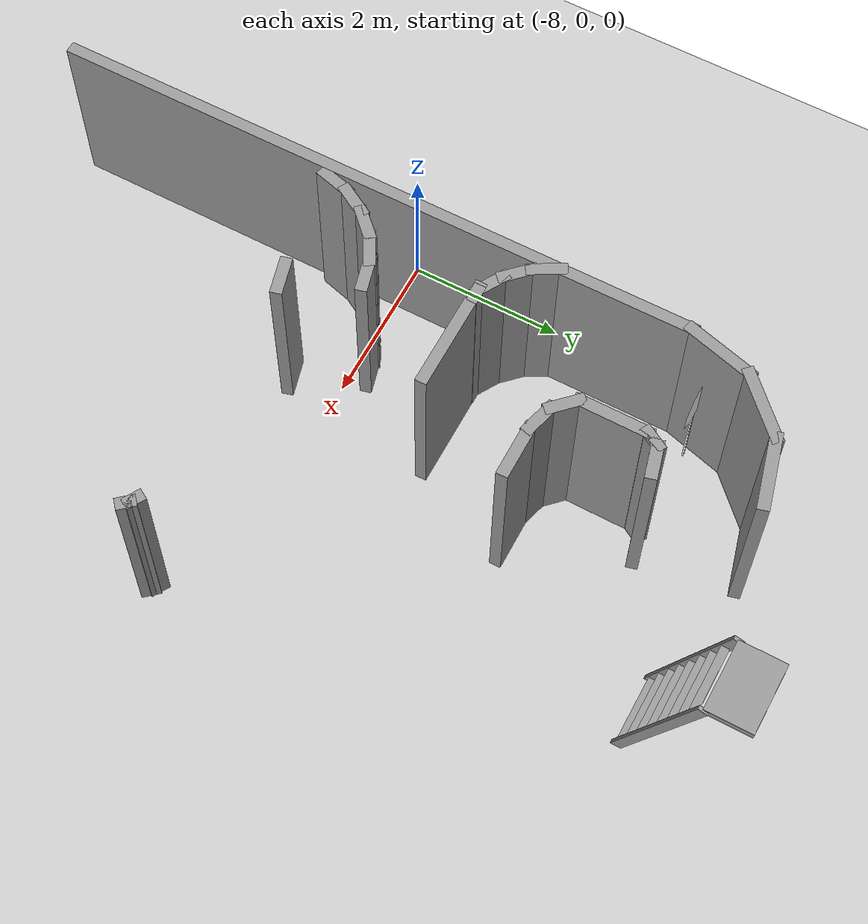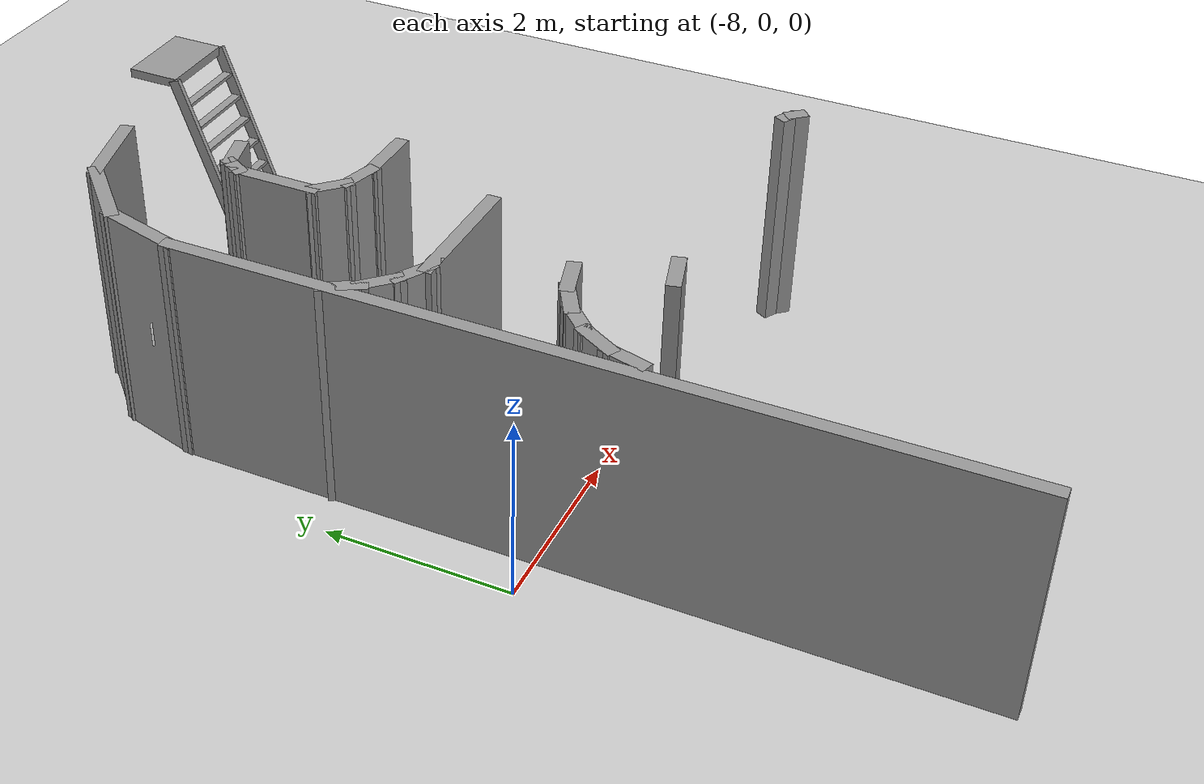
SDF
<sdf version="1.7">
 <world name="default">
  <model name="ground_plane">
   <static>1</static>
   <link name="link">
    <collision name="collision">
     <geometry><plane><normal>0 0 1</normal><size>100 100</size></plane></geometry>
     <surface>
      <contact><collide_bitmask>65535</collide_bitmask></contact>
      <friction><ode><mu>100</mu><mu2>50</mu2></ode></friction>
     </surface>
    </collision>
    <visual name="visual">
     <cast_shadows>0</cast_shadows>
     <geometry><plane><normal>0 0 1</normal><size>100 100</size></plane></geometry>
     <material>
      <script><uri>file://media/materials/scripts/gazebo.material</uri><name>Gazebo/Grey</name></script>
     </material>
    </visual>
   </link>
  </model>
  <model name="Race_Track">
   <link name="Wall_100">
    <pose>-7.14893 0.577689 0 0 0 -2.61799</pose>
    <visual name="Wall_100_Visual">
     <pose>0 0 1.25 0 -0 0</pose>
     <geometry><box><size>0.5 0.15 2.5</size></box></geometry>
     <material>
      <script><uri>file://media/materials/scripts/gazebo.material</uri><name>Gazebo/Grey</name></script>
      <ambient>1 1 1 1</ambient>
      <shader type="pixel"/>
     </material>
     <meta><layer>0</layer></meta>
    </visual>
    <collision name="Wall_100_Collision">
     <pose>0 0 1.25 0 -0 0</pose>
     <geometry><box><size>0.5 0.15 2.5</size></box></geometry>
     <surface>
      <friction>
       <ode><mu>1</mu><mu2>1</mu2><fdir1>0 0 0</fdir1><slip1>0</slip1><slip2>0</slip2></ode>
       <torsional>
        <coefficient>1</coefficient>
        <patch_radius>0</patch_radius>
        <surface_radius>0</surface_radius>
        <use_patch_radius>1</use_patch_radius>
        <ode><slip>0</slip></ode>
       </torsional>
      </friction>
      <bounce><restitution_coefficient>0</restitution_coefficient><threshold>1e+06</threshold></bounce>
      <contact>
       <collide_without_contact>0</collide_without_contact>
       <collide_without_contact_bitmask>1</collide_without_contact_bitmask>
       <collide_bitmask>1</collide_bitmask>
       <ode>
        <soft_cfm>0</soft_cfm>
        <soft_erp>0.2</soft_erp>
        <kp>1e+13</kp>
        <kd>1</kd>
        <max_vel>0.01</max_vel>
        <min_depth>0</min_depth>
       </ode>
       <bullet>
        <split_impulse>1</split_impulse>
        <split_impulse_penetration_threshold>-0.01</split_impulse_penetration_threshold>
        <soft_cfm>0</soft_cfm>
        <soft_erp>0.2</soft_erp>
        <kp>1e+13</kp>
        <kd>1</kd>
       </bullet>
      </contact>
     </surface>
    </collision>
   </link>
   <link name="Wall_101">
    <pose>-7.42423 0.366446 0 0 0 -2.35619</pose>
    <visual name="Wall_101_Visual">
     <pose>0 0 1.25 0 -0 0</pose>
     <geometry><box><size>0.5 0.15 2.5</size></box></geometry>
     <material>
      <script><uri>file://media/materials/scripts/gazebo.material</uri><name>Gazebo/Grey</name></script>
      <ambient>1 1 1 1</ambient>
      <shader type="pixel"/>
     </material>
     <meta><layer>0</layer></meta>
    </visual>
    <collision name="Wall_101_Collision">
     <pose>0 0 1.25 0 -0 0</pose>
     <geometry><box><size>0.5 0.15 2.5</size></box></geometry>
     <surface>
      <friction>
       <ode><mu>1</mu><mu2>1</mu2><fdir1>0 0 0</fdir1><slip1>0</slip1><slip2>0</slip2></ode>
       <torsional>
        <coefficient>1</coefficient>
        <patch_radius>0</patch_radius>
        <surface_radius>0</surface_radius>
        <use_patch_radius>1</use_patch_radius>
        <ode><slip>0</slip></ode>
       </torsional>
      </friction>
      <bounce><restitution_coefficient>0</restitution_coefficient><threshold>1e+06</threshold></bounce>
      <contact>
       <collide_without_contact>0</collide_without_contact>
       <collide_without_contact_bitmask>1</collide_without_contact_bitmask>
       <collide_bitmask>1</collide_bitmask>
       <ode>
        <soft_cfm>0</soft_cfm>
        <soft_erp>0.2</soft_erp>
        <kp>1e+13</kp>
        <kd>1</kd>
        <max_vel>0.01</max_vel>
        <min_depth>0</min_depth>
       </ode>
       <bullet>
        <split_impulse>1</split_impulse>
        <split_impulse_penetration_threshold>-0.01</split_impulse_penetration_threshold>
        <soft_cfm>0</soft_cfm>
        <soft_erp>0.2</soft_erp>
        <kp>1e+13</kp>
        <kd>1</kd>
       </bullet>
      </contact>
     </surface>
    </collision>
   </link>
   <link name="Wall_102">
    <pose>-7.63547 0.091147 0 0 0 -2.0944</pose>
    <visual name="Wall_102_Visual">
     <pose>0 0 1.25 0 -0 0</pose>
     <geometry><box><size>0.5 0.15 2.5</size></box></geometry>
     <material>
      <script><uri>file://media/materials/scripts/gazebo.material</uri><name>Gazebo/Grey</name></script>
      <ambient>1 1 1 1</ambient>
      <shader type="pixel"/>
     </material>
     <meta><layer>0</layer></meta>
    </visual>
    <collision name="Wall_102_Collision">
     <pose>0 0 1.25 0 -0 0</pose>
     <geometry><box><size>0.5 0.15 2.5</size></box></geometry>
     <surface>
      <friction>
       <ode><mu>1</mu><mu2>1</mu2><fdir1>0 0 0</fdir1><slip1>0</slip1><slip2>0</slip2></ode>
       <torsional>
        <coefficient>1</coefficient>
        <patch_radius>0</patch_radius>
        <surface_radius>0</surface_radius>
        <use_patch_radius>1</use_patch_radius>
        <ode><slip>0</slip></ode>
       </torsional>
      </friction>
      <bounce><restitution_coefficient>0</restitution_coefficient><threshold>1e+06</threshold></bounce>
      <contact>
       <collide_without_contact>0</collide_without_contact>
       <collide_without_contact_bitmask>1</collide_without_contact_bitmask>
       <collide_bitmask>1</collide_bitmask>
       <ode>
        <soft_cfm>0</soft_cfm>
        <soft_erp>0.2</soft_erp>
        <kp>1e+13</kp>
        <kd>1</kd>
        <max_vel>0.01</max_vel>
        <min_depth>0</min_depth>
       </ode>
       <bullet>
        <split_impulse>1</split_impulse>
        <split_impulse_penetration_threshold>-0.01</split_impulse_penetration_threshold>
        <soft_cfm>0</soft_cfm>
        <soft_erp>0.2</soft_erp>
        <kp>1e+13</kp>
        <kd>1</kd>
       </bullet>
      </contact>
     </surface>
    </collision>
   </link>
   <link name="Wall_103">
    <pose>-7.76827 -0.229444 0 0 0 -1.8326</pose>
    <visual name="Wall_103_Visual">
     <pose>0 0 1.25 0 -0 0</pose>
     <geometry><box><size>0.5 0.15 2.5</size></box></geometry>
     <material>
      <script><uri>file://media/materials/scripts/gazebo.material</uri><name>Gazebo/Grey</name></script>
      <ambient>1 1 1 1</ambient>
      <shader type="pixel"/>
     </material>
     <meta><layer>0</layer></meta>
    </visual>
    <collision name="Wall_103_Collision">
     <pose>0 0 1.25 0 -0 0</pose>
     <geometry><box><size>0.5 0.15 2.5</size></box></geometry>
     <surface>
      <friction>
       <ode><mu>1</mu><mu2>1</mu2><fdir1>0 0 0</fdir1><slip1>0</slip1><slip2>0</slip2></ode>
       <torsional>
        <coefficient>1</coefficient>
        <patch_radius>0</patch_radius>
        <surface_radius>0</surface_radius>
        <use_patch_radius>1</use_patch_radius>
        <ode><slip>0</slip></ode>
       </torsional>
      </friction>
      <bounce><restitution_coefficient>0</restitution_coefficient><threshold>1e+06</threshold></bounce>
      <contact>
       <collide_without_contact>0</collide_without_contact>
       <collide_without_contact_bitmask>1</collide_without_contact_bitmask>
       <collide_bitmask>1</collide_bitmask>
       <ode>
        <soft_cfm>0</soft_cfm>
        <soft_erp>0.2</soft_erp>
        <kp>1e+13</kp>
        <kd>1</kd>
        <max_vel>0.01</max_vel>
        <min_depth>0</min_depth>
       </ode>
       <bullet>
        <split_impulse>1</split_impulse>
        <split_impulse_penetration_threshold>-0.01</split_impulse_penetration_threshold>
        <soft_cfm>0</soft_cfm>
        <soft_erp>0.2</soft_erp>
        <kp>1e+13</kp>
        <kd>1</kd>
       </bullet>
      </contact>
     </surface>
    </collision>
   </link>
   <link name="Wall_106">
    <pose>-6.32834 -0.139517 0 0 0 -2.87979</pose>
    <visual name="Wall_106_Visual">
     <pose>0 0 1.25 0 -0 0</pose>
     <geometry><box><size>0.5 0.15 2.5</size></box></geometry>
     <material>
      <script><uri>file://media/materials/scripts/gazebo.material</uri><name>Gazebo/Grey</name></script>
      <ambient>1 1 1 1</ambient>
      <shader type="pixel"/>
     </material>
     <meta><layer>0</layer></meta>
    </visual>
    <collision name="Wall_106_Collision">
     <pose>0 0 1.25 0 -0 0</pose>
     <geometry><box><size>0.5 0.15 2.5</size></box></geometry>
     <surface>
      <friction>
       <ode><mu>1</mu><mu2>1</mu2><fdir1>0 0 0</fdir1><slip1>0</slip1><slip2>0</slip2></ode>
       <torsional>
        <coefficient>1</coefficient>
        <patch_radius>0</patch_radius>
        <surface_radius>0</surface_radius>
        <use_patch_radius>1</use_patch_radius>
        <ode><slip>0</slip></ode>
       </torsional>
      </friction>
      <bounce><restitution_coefficient>0</restitution_coefficient><threshold>1e+06</threshold></bounce>
      <contact>
       <collide_without_contact>0</collide_without_contact>
       <collide_without_contact_bitmask>1</collide_without_contact_bitmask>
       <collide_bitmask>1</collide_bitmask>
       <ode>
        <soft_cfm>0</soft_cfm>
        <soft_erp>0.2</soft_erp>
        <kp>1e+13</kp>
        <kd>1</kd>
        <max_vel>0.01</max_vel>
        <min_depth>0</min_depth>
       </ode>
       <bullet>
        <split_impulse>1</split_impulse>
        <split_impulse_penetration_threshold>-0.01</split_impulse_penetration_threshold>
        <soft_cfm>0</soft_cfm>
        <soft_erp>0.2</soft_erp>
        <kp>1e+13</kp>
        <kd>1</kd>
       </bullet>
      </contact>
     </surface>
    </collision>
   </link>
   <link name="Wall_159">
    <pose>-3.06922 -0.118145 0 0 0 -0.523599</pose>
    <visual name="Wall_159_Visual">
     <pose>0 0 1.25 0 -0 0</pose>
     <geometry><box><size>0.25 0.15 2.5</size></box></geometry>
     <material>
      <script><uri>file://media/materials/scripts/gazebo.material</uri><name>Gazebo/Grey</name></script>
      <ambient>1 1 1 1</ambient>
      <shader type="pixel"/>
     </material>
     <meta><layer>0</layer></meta>
    </visual>
    <collision name="Wall_159_Collision">
     <pose>0 0 1.25 0 -0 0</pose>
     <geometry><box><size>0.25 0.15 2.5</size></box></geometry>
     <surface>
      <friction>
       <ode><mu>1</mu><mu2>1</mu2><fdir1>0 0 0</fdir1><slip1>0</slip1><slip2>0</slip2></ode>
       <torsional>
        <coefficient>1</coefficient>
        <patch_radius>0</patch_radius>
        <surface_radius>0</surface_radius>
        <use_patch_radius>1</use_patch_radius>
        <ode><slip>0</slip></ode>
       </torsional>
      </friction>
      <bounce><restitution_coefficient>0</restitution_coefficient><threshold>1e+06</threshold></bounce>
      <contact>
       <collide_without_contact>0</collide_without_contact>
       <collide_without_contact_bitmask>1</collide_without_contact_bitmask>
       <collide_bitmask>1</collide_bitmask>
       <ode>
        <soft_cfm>0</soft_cfm>
        <soft_erp>0.2</soft_erp>
        <kp>1e+13</kp>
        <kd>1</kd>
        <max_vel>0.01</max_vel>
        <min_depth>0</min_depth>
       </ode>
       <bullet>
        <split_impulse>1</split_impulse>
        <split_impulse_penetration_threshold>-0.01</split_impulse_penetration_threshold>
        <soft_cfm>0</soft_cfm>
        <soft_erp>0.2</soft_erp>
        <kp>1e+13</kp>
        <kd>1</kd>
       </bullet>
      </contact>
     </surface>
    </collision>
   </link>
   <link name="Wall_160">
    <pose>-2.99486 -0.1785 0 0 0 -0.850063</pose>
    <visual name="Wall_160_Visual">
     <pose>0 0 1.25 0 -0 0</pose>
     <geometry><box><size>0.244115 0.15 2.5</size></box></geometry>
     <material>
      <script><uri>file://media/materials/scripts/gazebo.material</uri><name>Gazebo/Grey</name></script>
      <ambient>1 1 1 1</ambient>
      <shader type="pixel"/>
     </material>
     <meta><layer>0</layer></meta>
    </visual>
    <collision name="Wall_160_Collision">
     <pose>0 0 1.25 0 -0 0</pose>
     <geometry><box><size>0.244115 0.15 2.5</size></box></geometry>
     <surface>
      <friction>
       <ode><mu>1</mu><mu2>1</mu2><fdir1>0 0 0</fdir1><slip1>0</slip1><slip2>0</slip2></ode>
       <torsional>
        <coefficient>1</coefficient>
        <patch_radius>0</patch_radius>
        <surface_radius>0</surface_radius>
        <use_patch_radius>1</use_patch_radius>
        <ode><slip>0</slip></ode>
       </torsional>
      </friction>
      <bounce><restitution_coefficient>0</restitution_coefficient><threshold>1e+06</threshold></bounce>
      <contact>
       <collide_without_contact>0</collide_without_contact>
       <collide_without_contact_bitmask>1</collide_without_contact_bitmask>
       <collide_bitmask>1</collide_bitmask>
       <ode>
        <soft_cfm>0</soft_cfm>
        <soft_erp>0.2</soft_erp>
        <kp>1e+13</kp>
        <kd>1</kd>
        <max_vel>0.01</max_vel>
        <min_depth>0</min_depth>
       </ode>
       <bullet>
        <split_impulse>1</split_impulse>
        <split_impulse_penetration_threshold>-0.01</split_impulse_penetration_threshold>
        <soft_cfm>0</soft_cfm>
        <soft_erp>0.2</soft_erp>
        <kp>1e+13</kp>
        <kd>1</kd>
       </bullet>
      </contact>
     </surface>
    </collision>
   </link>
   <link name="Wall_20">
    <pose>-6.73464 5.89949 0 0 0 -2.87979</pose>
    <visual name="Wall_20_Visual">
     <pose>0 0 1.25 0 -0 0</pose>
     <geometry><box><size>1 0.15 2.5</size></box></geometry>
     <material>
      <script><uri>file://media/materials/scripts/gazebo.material</uri><name>Gazebo/Grey</name></script>
      <ambient>1 1 1 1</ambient>
      <shader type="pixel"/>
     </material>
     <meta><layer>0</layer></meta>
    </visual>
    <collision name="Wall_20_Collision">
     <pose>0 0 1.25 0 -0 0</pose>
     <geometry><box><size>1 0.15 2.5</size></box></geometry>
     <surface>
      <friction>
       <ode><mu>1</mu><mu2>1</mu2><fdir1>0 0 0</fdir1><slip1>0</slip1><slip2>0</slip2></ode>
       <torsional>
        <coefficient>1</coefficient>
        <patch_radius>0</patch_radius>
        <surface_radius>0</surface_radius>
        <use_patch_radius>1</use_patch_radius>
        <ode><slip>0</slip></ode>
       </torsional>
      </friction>
      <bounce><restitution_coefficient>0</restitution_coefficient><threshold>1e+06</threshold></bounce>
      <contact>
       <collide_without_contact>0</collide_without_contact>
       <collide_without_contact_bitmask>1</collide_without_contact_bitmask>
       <collide_bitmask>1</collide_bitmask>
       <ode>
        <soft_cfm>0</soft_cfm>
        <soft_erp>0.2</soft_erp>
        <kp>1e+13</kp>
        <kd>1</kd>
        <max_vel>0.01</max_vel>
        <min_depth>0</min_depth>
       </ode>
       <bullet>
        <split_impulse>1</split_impulse>
        <split_impulse_penetration_threshold>-0.01</split_impulse_penetration_threshold>
        <soft_cfm>0</soft_cfm>
        <soft_erp>0.2</soft_erp>
        <kp>1e+13</kp>
        <kd>1</kd>
       </bullet>
      </contact>
     </surface>
    </collision>
   </link>
   <link name="Wall_21">
    <pose>-7.44568 5.48897 0 0 0 -2.35619</pose>
    <visual name="Wall_21_Visual">
     <pose>0 0 1.25 0 -0 0</pose>
     <geometry><box><size>1 0.15 2.5</size></box></geometry>
     <material>
      <script><uri>file://media/materials/scripts/gazebo.material</uri><name>Gazebo/Grey</name></script>
      <ambient>1 1 1 1</ambient>
      <shader type="pixel"/>
     </material>
     <meta><layer>0</layer></meta>
    </visual>
    <collision name="Wall_21_Collision">
     <pose>0 0 1.25 0 -0 0</pose>
     <geometry><box><size>1 0.15 2.5</size></box></geometry>
     <surface>
      <friction>
       <ode><mu>1</mu><mu2>1</mu2><fdir1>0 0 0</fdir1><slip1>0</slip1><slip2>0</slip2></ode>
       <torsional>
        <coefficient>1</coefficient>
        <patch_radius>0</patch_radius>
        <surface_radius>0</surface_radius>
        <use_patch_radius>1</use_patch_radius>
        <ode><slip>0</slip></ode>
       </torsional>
      </friction>
      <bounce><restitution_coefficient>0</restitution_coefficient><threshold>1e+06</threshold></bounce>
      <contact>
       <collide_without_contact>0</collide_without_contact>
       <collide_without_contact_bitmask>1</collide_without_contact_bitmask>
       <collide_bitmask>1</collide_bitmask>
       <ode>
        <soft_cfm>0</soft_cfm>
        <soft_erp>0.2</soft_erp>
        <kp>1e+13</kp>
        <kd>1</kd>
        <max_vel>0.01</max_vel>
        <min_depth>0</min_depth>
       </ode>
       <bullet>
        <split_impulse>1</split_impulse>
        <split_impulse_penetration_threshold>-0.01</split_impulse_penetration_threshold>
        <soft_cfm>0</soft_cfm>
        <soft_erp>0.2</soft_erp>
        <kp>1e+13</kp>
        <kd>1</kd>
       </bullet>
      </contact>
     </surface>
    </collision>
   </link>
   <link name="Wall_22">
    <pose>-7.8562 4.77793 0 0 0 -1.8326</pose>
    <visual name="Wall_22_Visual">
     <pose>0 0 1.25 0 -0 0</pose>
     <geometry><box><size>1 0.15 2.5</size></box></geometry>
     <material>
      <script><uri>file://media/materials/scripts/gazebo.material</uri><name>Gazebo/Grey</name></script>
      <ambient>1 1 1 1</ambient>
      <shader type="pixel"/>
     </material>
     <meta><layer>0</layer></meta>
    </visual>
    <collision name="Wall_22_Collision">
     <pose>0 0 1.25 0 -0 0</pose>
     <geometry><box><size>1 0.15 2.5</size></box></geometry>
     <surface>
      <friction>
       <ode><mu>1</mu><mu2>1</mu2><fdir1>0 0 0</fdir1><slip1>0</slip1><slip2>0</slip2></ode>
       <torsional>
        <coefficient>1</coefficient>
        <patch_radius>0</patch_radius>
        <surface_radius>0</surface_radius>
        <use_patch_radius>1</use_patch_radius>
        <ode><slip>0</slip></ode>
       </torsional>
      </friction>
      <bounce><restitution_coefficient>0</restitution_coefficient><threshold>1e+06</threshold></bounce>
      <contact>
       <collide_without_contact>0</collide_without_contact>
       <collide_without_contact_bitmask>1</collide_without_contact_bitmask>
       <collide_bitmask>1</collide_bitmask>
       <ode>
        <soft_cfm>0</soft_cfm>
        <soft_erp>0.2</soft_erp>
        <kp>1e+13</kp>
        <kd>1</kd>
        <max_vel>0.01</max_vel>
        <min_depth>0</min_depth>
       </ode>
       <bullet>
        <split_impulse>1</split_impulse>
        <split_impulse_penetration_threshold>-0.01</split_impulse_penetration_threshold>
        <soft_cfm>0</soft_cfm>
        <soft_erp>0.2</soft_erp>
        <kp>1e+13</kp>
        <kd>1</kd>
       </bullet>
      </contact>
     </surface>
    </collision>
   </link>
   <link name="Wall_23">
    <pose>-7.94779 0.174009 0 0 0 -1.56641</pose>
    <visual name="Wall_23_Visual">
     <pose>0 0 1.25 0 -0 0</pose>
     <geometry><box><size>8.53689 0.15 2.5</size></box></geometry>
     <material>
      <script><uri>file://media/materials/scripts/gazebo.material</uri><name>Gazebo/Grey</name></script>
      <ambient>1 1 1 1</ambient>
      <shader type="pixel"/>
     </material>
     <meta><layer>0</layer></meta>
    </visual>
    <collision name="Wall_23_Collision">
     <pose>0 0 1.25 0 -0 0</pose>
     <geometry><box><size>8.53689 0.15 2.5</size></box></geometry>
     <surface>
      <friction>
       <ode><mu>1</mu><mu2>1</mu2><fdir1>0 0 0</fdir1><slip1>0</slip1><slip2>0</slip2></ode>
       <torsional>
        <coefficient>1</coefficient>
        <patch_radius>0</patch_radius>
        <surface_radius>0</surface_radius>
        <use_patch_radius>1</use_patch_radius>
        <ode><slip>0</slip></ode>
       </torsional>
      </friction>
      <bounce><restitution_coefficient>0</restitution_coefficient><threshold>1e+06</threshold></bounce>
      <contact>
       <collide_without_contact>0</collide_without_contact>
       <collide_without_contact_bitmask>1</collide_without_contact_bitmask>
       <collide_bitmask>1</collide_bitmask>
       <ode>
        <soft_cfm>0</soft_cfm>
        <soft_erp>0.2</soft_erp>
        <kp>1e+13</kp>
        <kd>1</kd>
        <max_vel>0.01</max_vel>
        <min_depth>0</min_depth>
       </ode>
       <bullet>
        <split_impulse>1</split_impulse>
        <split_impulse_penetration_threshold>-0.01</split_impulse_penetration_threshold>
        <soft_cfm>0</soft_cfm>
        <soft_erp>0.2</soft_erp>
        <kp>1e+13</kp>
        <kd>1</kd>
       </bullet>
      </contact>
     </surface>
    </collision>
   </link>
   <link name="Wall_58">
    <pose>-6.25008 4.71491 0 0 0 -2.87979</pose>
    <visual name="Wall_58_Visual">
     <pose>0 0 1.25 0 -0 0</pose>
     <geometry><box><size>0.5 0.15 2.5</size></box></geometry>
     <material>
      <script><uri>file://media/materials/scripts/gazebo.material</uri><name>Gazebo/Grey</name></script>
      <ambient>1 1 1 1</ambient>
      <shader type="pixel"/>
     </material>
     <meta><layer>0</layer></meta>
    </visual>
    <collision name="Wall_58_Collision">
     <pose>0 0 1.25 0 -0 0</pose>
     <geometry><box><size>0.5 0.15 2.5</size></box></geometry>
     <surface>
      <friction>
       <ode><mu>1</mu><mu2>1</mu2><fdir1>0 0 0</fdir1><slip1>0</slip1><slip2>0</slip2></ode>
       <torsional>
        <coefficient>1</coefficient>
        <patch_radius>0</patch_radius>
        <surface_radius>0</surface_radius>
        <use_patch_radius>1</use_patch_radius>
        <ode><slip>0</slip></ode>
       </torsional>
      </friction>
      <bounce><restitution_coefficient>0</restitution_coefficient><threshold>1e+06</threshold></bounce>
      <contact>
       <collide_without_contact>0</collide_without_contact>
       <collide_without_contact_bitmask>1</collide_without_contact_bitmask>
       <collide_bitmask>1</collide_bitmask>
       <ode>
        <soft_cfm>0</soft_cfm>
        <soft_erp>0.2</soft_erp>
        <kp>1e+13</kp>
        <kd>1</kd>
        <max_vel>0.01</max_vel>
        <min_depth>0</min_depth>
       </ode>
       <bullet>
        <split_impulse>1</split_impulse>
        <split_impulse_penetration_threshold>-0.01</split_impulse_penetration_threshold>
        <soft_cfm>0</soft_cfm>
        <soft_erp>0.2</soft_erp>
        <kp>1e+13</kp>
        <kd>1</kd>
       </bullet>
      </contact>
     </surface>
    </collision>
   </link>
   <link name="Wall_62">
    <pose>-6.44412 4.62632 0 0 0 -2.0944</pose>
    <visual name="Wall_62_Visual">
     <pose>0 0 1.25 0 -0 0</pose>
     <geometry><box><size>0.25 0.15 2.5</size></box></geometry>
     <material>
      <script><uri>file://media/materials/scripts/gazebo.material</uri><name>Gazebo/Grey</name></script>
      <ambient>1 1 1 1</ambient>
      <shader type="pixel"/>
     </material>
     <meta><layer>0</layer></meta>
    </visual>
    <collision name="Wall_62_Collision">
     <pose>0 0 1.25 0 -0 0</pose>
     <geometry><box><size>0.25 0.15 2.5</size></box></geometry>
     <surface>
      <friction>
       <ode><mu>1</mu><mu2>1</mu2><fdir1>0 0 0</fdir1><slip1>0</slip1><slip2>0</slip2></ode>
       <torsional>
        <coefficient>1</coefficient>
        <patch_radius>0</patch_radius>
        <surface_radius>0</surface_radius>
        <use_patch_radius>1</use_patch_radius>
        <ode><slip>0</slip></ode>
       </torsional>
      </friction>
      <bounce><restitution_coefficient>0</restitution_coefficient><threshold>1e+06</threshold></bounce>
      <contact>
       <collide_without_contact>0</collide_without_contact>
       <collide_without_contact_bitmask>1</collide_without_contact_bitmask>
       <collide_bitmask>1</collide_bitmask>
       <ode>
        <soft_cfm>0</soft_cfm>
        <soft_erp>0.2</soft_erp>
        <kp>1e+13</kp>
        <kd>1</kd>
        <max_vel>0.01</max_vel>
        <min_depth>0</min_depth>
       </ode>
       <bullet>
        <split_impulse>1</split_impulse>
        <split_impulse_penetration_threshold>-0.01</split_impulse_penetration_threshold>
        <soft_cfm>0</soft_cfm>
        <soft_erp>0.2</soft_erp>
        <kp>1e+13</kp>
        <kd>1</kd>
       </bullet>
      </contact>
     </surface>
    </collision>
   </link>
   <link name="Wall_63">
    <pose>-6.49412 4.53972 0 0 0 -2.0944</pose>
    <visual name="Wall_63_Visual">
     <pose>0 0 1.25 0 -0 0</pose>
     <geometry><box><size>0.25 0.15 2.5</size></box></geometry>
     <material>
      <script><uri>file://media/materials/scripts/gazebo.material</uri><name>Gazebo/Grey</name></script>
      <ambient>1 1 1 1</ambient>
      <shader type="pixel"/>
     </material>
     <meta><layer>0</layer></meta>
    </visual>
    <collision name="Wall_63_Collision">
     <pose>0 0 1.25 0 -0 0</pose>
     <geometry><box><size>0.25 0.15 2.5</size></box></geometry>
     <surface>
      <friction>
       <ode><mu>1</mu><mu2>1</mu2><fdir1>0 0 0</fdir1><slip1>0</slip1><slip2>0</slip2></ode>
       <torsional>
        <coefficient>1</coefficient>
        <patch_radius>0</patch_radius>
        <surface_radius>0</surface_radius>
        <use_patch_radius>1</use_patch_radius>
        <ode><slip>0</slip></ode>
       </torsional>
      </friction>
      <bounce><restitution_coefficient>0</restitution_coefficient><threshold>1e+06</threshold></bounce>
      <contact>
       <collide_without_contact>0</collide_without_contact>
       <collide_without_contact_bitmask>1</collide_without_contact_bitmask>
       <collide_bitmask>1</collide_bitmask>
       <ode>
        <soft_cfm>0</soft_cfm>
        <soft_erp>0.2</soft_erp>
        <kp>1e+13</kp>
        <kd>1</kd>
        <max_vel>0.01</max_vel>
        <min_depth>0</min_depth>
       </ode>
       <bullet>
        <split_impulse>1</split_impulse>
        <split_impulse_penetration_threshold>-0.01</split_impulse_penetration_threshold>
        <soft_cfm>0</soft_cfm>
        <soft_erp>0.2</soft_erp>
        <kp>1e+13</kp>
        <kd>1</kd>
       </bullet>
      </contact>
     </surface>
    </collision>
   </link>
   <link name="Wall_64">
    <pose>-6.51912 4.07142 0 0 0 -1.5708</pose>
    <visual name="Wall_64_Visual">
     <pose>0 0 1.25 0 -0 0</pose>
     <geometry><box><size>1 0.15 2.5</size></box></geometry>
     <material>
      <script><uri>file://media/materials/scripts/gazebo.material</uri><name>Gazebo/Grey</name></script>
      <ambient>1 1 1 1</ambient>
      <shader type="pixel"/>
     </material>
     <meta><layer>0</layer></meta>
    </visual>
    <collision name="Wall_64_Collision">
     <pose>0 0 1.25 0 -0 0</pose>
     <geometry><box><size>1 0.15 2.5</size></box></geometry>
     <surface>
      <friction>
       <ode><mu>1</mu><mu2>1</mu2><fdir1>0 0 0</fdir1><slip1>0</slip1><slip2>0</slip2></ode>
       <torsional>
        <coefficient>1</coefficient>
        <patch_radius>0</patch_radius>
        <surface_radius>0</surface_radius>
        <use_patch_radius>1</use_patch_radius>
        <ode><slip>0</slip></ode>
       </torsional>
      </friction>
      <bounce><restitution_coefficient>0</restitution_coefficient><threshold>1e+06</threshold></bounce>
      <contact>
       <collide_without_contact>0</collide_without_contact>
       <collide_without_contact_bitmask>1</collide_without_contact_bitmask>
       <collide_bitmask>1</collide_bitmask>
       <ode>
        <soft_cfm>0</soft_cfm>
        <soft_erp>0.2</soft_erp>
        <kp>1e+13</kp>
        <kd>1</kd>
        <max_vel>0.01</max_vel>
        <min_depth>0</min_depth>
       </ode>
       <bullet>
        <split_impulse>1</split_impulse>
        <split_impulse_penetration_threshold>-0.01</split_impulse_penetration_threshold>
        <soft_cfm>0</soft_cfm>
        <soft_erp>0.2</soft_erp>
        <kp>1e+13</kp>
        <kd>1</kd>
       </bullet>
      </contact>
     </surface>
    </collision>
   </link>
   <link name="Wall_65">
    <pose>-6.39538 3.52267 0 0 0 -0.785398</pose>
    <visual name="Wall_65_Visual">
     <pose>0 0 1.25 0 -0 0</pose>
     <geometry><box><size>0.5 0.15 2.5</size></box></geometry>
     <material>
      <script><uri>file://media/materials/scripts/gazebo.material</uri><name>Gazebo/Grey</name></script>
      <ambient>1 1 1 1</ambient>
      <shader type="pixel"/>
     </material>
     <meta><layer>0</layer></meta>
    </visual>
    <collision name="Wall_65_Collision">
     <pose>0 0 1.25 0 -0 0</pose>
     <geometry><box><size>0.5 0.15 2.5</size></box></geometry>
     <surface>
      <friction>
       <ode><mu>1</mu><mu2>1</mu2><fdir1>0 0 0</fdir1><slip1>0</slip1><slip2>0</slip2></ode>
       <torsional>
        <coefficient>1</coefficient>
        <patch_radius>0</patch_radius>
        <surface_radius>0</surface_radius>
        <use_patch_radius>1</use_patch_radius>
        <ode><slip>0</slip></ode>
       </torsional>
      </friction>
      <bounce><restitution_coefficient>0</restitution_coefficient><threshold>1e+06</threshold></bounce>
      <contact>
       <collide_without_contact>0</collide_without_contact>
       <collide_without_contact_bitmask>1</collide_without_contact_bitmask>
       <collide_bitmask>1</collide_bitmask>
       <ode>
        <soft_cfm>0</soft_cfm>
        <soft_erp>0.2</soft_erp>
        <kp>1e+13</kp>
        <kd>1</kd>
        <max_vel>0.01</max_vel>
        <min_depth>0</min_depth>
       </ode>
       <bullet>
        <split_impulse>1</split_impulse>
        <split_impulse_penetration_threshold>-0.01</split_impulse_penetration_threshold>
        <soft_cfm>0</soft_cfm>
        <soft_erp>0.2</soft_erp>
        <kp>1e+13</kp>
        <kd>1</kd>
       </bullet>
      </contact>
     </surface>
    </collision>
   </link>
   <link name="Wall_66">
    <pose>-6.1026 3.35364 0 0 0 -0.261799</pose>
    <visual name="Wall_66_Visual">
     <pose>0 0 1.25 0 -0 0</pose>
     <geometry><box><size>0.5 0.15 2.5</size></box></geometry>
     <material>
      <script><uri>file://media/materials/scripts/gazebo.material</uri><name>Gazebo/Grey</name></script>
      <ambient>1 1 1 1</ambient>
      <shader type="pixel"/>
     </material>
     <meta><layer>0</layer></meta>
    </visual>
    <collision name="Wall_66_Collision">
     <pose>0 0 1.25 0 -0 0</pose>
     <geometry><box><size>0.5 0.15 2.5</size></box></geometry>
     <surface>
      <friction>
       <ode><mu>1</mu><mu2>1</mu2><fdir1>0 0 0</fdir1><slip1>0</slip1><slip2>0</slip2></ode>
       <torsional>
        <coefficient>1</coefficient>
        <patch_radius>0</patch_radius>
        <surface_radius>0</surface_radius>
        <use_patch_radius>1</use_patch_radius>
        <ode><slip>0</slip></ode>
       </torsional>
      </friction>
      <bounce><restitution_coefficient>0</restitution_coefficient><threshold>1e+06</threshold></bounce>
      <contact>
       <collide_without_contact>0</collide_without_contact>
       <collide_without_contact_bitmask>1</collide_without_contact_bitmask>
       <collide_bitmask>1</collide_bitmask>
       <ode>
        <soft_cfm>0</soft_cfm>
        <soft_erp>0.2</soft_erp>
        <kp>1e+13</kp>
        <kd>1</kd>
        <max_vel>0.01</max_vel>
        <min_depth>0</min_depth>
       </ode>
       <bullet>
        <split_impulse>1</split_impulse>
        <split_impulse_penetration_threshold>-0.01</split_impulse_penetration_threshold>
        <soft_cfm>0</soft_cfm>
        <soft_erp>0.2</soft_erp>
        <kp>1e+13</kp>
        <kd>1</kd>
       </bullet>
      </contact>
     </surface>
    </collision>
   </link>
   <link name="Wall_67">
    <pose>-5.63356 3.30834 0 0 -0 0</pose>
    <visual name="Wall_67_Visual">
     <pose>0 0 1.25 0 -0 0</pose>
     <geometry><box><size>0.75 0.15 2.5</size></box></geometry>
     <material>
      <script><uri>file://media/materials/scripts/gazebo.material</uri><name>Gazebo/Grey</name></script>
      <ambient>1 1 1 1</ambient>
      <shader type="pixel"/>
     </material>
     <meta><layer>0</layer></meta>
    </visual>
    <collision name="Wall_67_Collision">
     <pose>0 0 1.25 0 -0 0</pose>
     <geometry><box><size>0.75 0.15 2.5</size></box></geometry>
     <surface>
      <friction>
       <ode><mu>1</mu><mu2>1</mu2><fdir1>0 0 0</fdir1><slip1>0</slip1><slip2>0</slip2></ode>
       <torsional>
        <coefficient>1</coefficient>
        <patch_radius>0</patch_radius>
        <surface_radius>0</surface_radius>
        <use_patch_radius>1</use_patch_radius>
        <ode><slip>0</slip></ode>
       </torsional>
      </friction>
      <bounce><restitution_coefficient>0</restitution_coefficient><threshold>1e+06</threshold></bounce>
      <contact>
       <collide_without_contact>0</collide_without_contact>
       <collide_without_contact_bitmask>1</collide_without_contact_bitmask>
       <collide_bitmask>1</collide_bitmask>
       <ode>
        <soft_cfm>0</soft_cfm>
        <soft_erp>0.2</soft_erp>
        <kp>1e+13</kp>
        <kd>1</kd>
        <max_vel>0.01</max_vel>
        <min_depth>0</min_depth>
       </ode>
       <bullet>
        <split_impulse>1</split_impulse>
        <split_impulse_penetration_threshold>-0.01</split_impulse_penetration_threshold>
        <soft_cfm>0</soft_cfm>
        <soft_erp>0.2</soft_erp>
        <kp>1e+13</kp>
        <kd>1</kd>
       </bullet>
      </contact>
     </surface>
    </collision>
   </link>
   <link name="Wall_72">
    <pose>-6.60856 1.95834 0 0 -0 3.14159</pose>
    <visual name="Wall_72_Visual">
     <pose>0 0 1.25 0 -0 0</pose>
     <geometry><box><size>1.5 0.15 2.5</size></box></geometry>
     <material>
      <script><uri>file://media/materials/scripts/gazebo.material</uri><name>Gazebo/Grey</name></script>
      <ambient>1 1 1 1</ambient>
      <shader type="pixel"/>
     </material>
     <meta><layer>0</layer></meta>
    </visual>
    <collision name="Wall_72_Collision">
     <pose>0 0 1.25 0 -0 0</pose>
     <geometry><box><size>1.5 0.15 2.5</size></box></geometry>
     <surface>
      <friction>
       <ode><mu>1</mu><mu2>1</mu2><fdir1>0 0 0</fdir1><slip1>0</slip1><slip2>0</slip2></ode>
       <torsional>
        <coefficient>1</coefficient>
        <patch_radius>0</patch_radius>
        <surface_radius>0</surface_radius>
        <use_patch_radius>1</use_patch_radius>
        <ode><slip>0</slip></ode>
       </torsional>
      </friction>
      <bounce><restitution_coefficient>0</restitution_coefficient><threshold>1e+06</threshold></bounce>
      <contact>
       <collide_without_contact>0</collide_without_contact>
       <collide_without_contact_bitmask>1</collide_without_contact_bitmask>
       <collide_bitmask>1</collide_bitmask>
       <ode>
        <soft_cfm>0</soft_cfm>
        <soft_erp>0.2</soft_erp>
        <kp>1e+13</kp>
        <kd>1</kd>
        <max_vel>0.01</max_vel>
        <min_depth>0</min_depth>
       </ode>
       <bullet>
        <split_impulse>1</split_impulse>
        <split_impulse_penetration_threshold>-0.01</split_impulse_penetration_threshold>
        <soft_cfm>0</soft_cfm>
        <soft_erp>0.2</soft_erp>
        <kp>1e+13</kp>
        <kd>1</kd>
       </bullet>
      </contact>
     </surface>
    </collision>
   </link>
   <link name="Wall_74">
    <pose>-7.87994 2.53782 0 0 0 -1.0472</pose>
    <visual name="Wall_74_Visual">
     <pose>0 0 1.25 0 -0 0</pose>
     <geometry><box><size>0.5 0.15 2.5</size></box></geometry>
     <material>
      <script><uri>file://media/materials/scripts/gazebo.material</uri><name>Gazebo/Grey</name></script>
      <ambient>1 1 1 1</ambient>
      <shader type="pixel"/>
     </material>
     <meta><layer>0</layer></meta>
    </visual>
    <collision name="Wall_74_Collision">
     <pose>0 0 1.25 0 -0 0</pose>
     <geometry><box><size>0.5 0.15 2.5</size></box></geometry>
     <surface>
      <friction>
       <ode><mu>1</mu><mu2>1</mu2><fdir1>0 0 0</fdir1><slip1>0</slip1><slip2>0</slip2></ode>
       <torsional>
        <coefficient>1</coefficient>
        <patch_radius>0</patch_radius>
        <surface_radius>0</surface_radius>
        <use_patch_radius>1</use_patch_radius>
        <ode><slip>0</slip></ode>
       </torsional>
      </friction>
      <bounce><restitution_coefficient>0</restitution_coefficient><threshold>1e+06</threshold></bounce>
      <contact>
       <collide_without_contact>0</collide_without_contact>
       <collide_without_contact_bitmask>1</collide_without_contact_bitmask>
       <collide_bitmask>1</collide_bitmask>
       <ode>
        <soft_cfm>0</soft_cfm>
        <soft_erp>0.2</soft_erp>
        <kp>1e+13</kp>
        <kd>1</kd>
        <max_vel>0.01</max_vel>
        <min_depth>0</min_depth>
       </ode>
       <bullet>
        <split_impulse>1</split_impulse>
        <split_impulse_penetration_threshold>-0.01</split_impulse_penetration_threshold>
        <soft_cfm>0</soft_cfm>
        <soft_erp>0.2</soft_erp>
        <kp>1e+13</kp>
        <kd>1</kd>
       </bullet>
      </contact>
     </surface>
    </collision>
   </link>
   <link name="Wall_75">
    <pose>-7.66869 2.26253 0 0 0 -0.785398</pose>
    <visual name="Wall_75_Visual">
     <pose>0 0 1.25 0 -0 0</pose>
     <geometry><box><size>0.5 0.15 2.5</size></box></geometry>
     <material>
      <script><uri>file://media/materials/scripts/gazebo.material</uri><name>Gazebo/Grey</name></script>
      <ambient>1 1 1 1</ambient>
      <shader type="pixel"/>
     </material>
     <meta><layer>0</layer></meta>
    </visual>
    <collision name="Wall_75_Collision">
     <pose>0 0 1.25 0 -0 0</pose>
     <geometry><box><size>0.5 0.15 2.5</size></box></geometry>
     <surface>
      <friction>
       <ode><mu>1</mu><mu2>1</mu2><fdir1>0 0 0</fdir1><slip1>0</slip1><slip2>0</slip2></ode>
       <torsional>
        <coefficient>1</coefficient>
        <patch_radius>0</patch_radius>
        <surface_radius>0</surface_radius>
        <use_patch_radius>1</use_patch_radius>
        <ode><slip>0</slip></ode>
       </torsional>
      </friction>
      <bounce><restitution_coefficient>0</restitution_coefficient><threshold>1e+06</threshold></bounce>
      <contact>
       <collide_without_contact>0</collide_without_contact>
       <collide_without_contact_bitmask>1</collide_without_contact_bitmask>
       <collide_bitmask>1</collide_bitmask>
       <ode>
        <soft_cfm>0</soft_cfm>
        <soft_erp>0.2</soft_erp>
        <kp>1e+13</kp>
        <kd>1</kd>
        <max_vel>0.01</max_vel>
        <min_depth>0</min_depth>
       </ode>
       <bullet>
        <split_impulse>1</split_impulse>
        <split_impulse_penetration_threshold>-0.01</split_impulse_penetration_threshold>
        <soft_cfm>0</soft_cfm>
        <soft_erp>0.2</soft_erp>
        <kp>1e+13</kp>
        <kd>1</kd>
       </bullet>
      </contact>
     </surface>
    </collision>
   </link>
   <link name="Wall_76">
    <pose>-7.39339 2.05128 0 0 0 -0.523599</pose>
    <visual name="Wall_76_Visual">
     <pose>0 0 1.25 0 -0 0</pose>
     <geometry><box><size>0.5 0.15 2.5</size></box></geometry>
     <material>
      <script><uri>file://media/materials/scripts/gazebo.material</uri><name>Gazebo/Grey</name></script>
      <ambient>1 1 1 1</ambient>
      <shader type="pixel"/>
     </material>
     <meta><layer>0</layer></meta>
    </visual>
    <collision name="Wall_76_Collision">
     <pose>0 0 1.25 0 -0 0</pose>
     <geometry><box><size>0.5 0.15 2.5</size></box></geometry>
     <surface>
      <friction>
       <ode><mu>1</mu><mu2>1</mu2><fdir1>0 0 0</fdir1><slip1>0</slip1><slip2>0</slip2></ode>
       <torsional>
        <coefficient>1</coefficient>
        <patch_radius>0</patch_radius>
        <surface_radius>0</surface_radius>
        <use_patch_radius>1</use_patch_radius>
        <ode><slip>0</slip></ode>
       </torsional>
      </friction>
      <bounce><restitution_coefficient>0</restitution_coefficient><threshold>1e+06</threshold></bounce>
      <contact>
       <collide_without_contact>0</collide_without_contact>
       <collide_without_contact_bitmask>1</collide_without_contact_bitmask>
       <collide_bitmask>1</collide_bitmask>
       <ode>
        <soft_cfm>0</soft_cfm>
        <soft_erp>0.2</soft_erp>
        <kp>1e+13</kp>
        <kd>1</kd>
        <max_vel>0.01</max_vel>
        <min_depth>0</min_depth>
       </ode>
       <bullet>
        <split_impulse>1</split_impulse>
        <split_impulse_penetration_threshold>-0.01</split_impulse_penetration_threshold>
        <soft_cfm>0</soft_cfm>
        <soft_erp>0.2</soft_erp>
        <kp>1e+13</kp>
        <kd>1</kd>
       </bullet>
      </contact>
     </surface>
    </collision>
   </link>
   <link name="Wall_77">
    <pose>-7.19184 1.96378 0 0 -0 0</pose>
    <visual name="Wall_77_Visual">
     <pose>0 0 1.25 0 -0 0</pose>
     <geometry><box><size>0.25 0.15 2.5</size></box></geometry>
     <material>
      <script><uri>file://media/materials/scripts/gazebo.material</uri><name>Gazebo/Grey</name></script>
      <ambient>1 1 1 1</ambient>
      <shader type="pixel"/>
     </material>
     <meta><layer>0</layer></meta>
    </visual>
    <collision name="Wall_77_Collision">
     <pose>0 0 1.25 0 -0 0</pose>
     <geometry><box><size>0.25 0.15 2.5</size></box></geometry>
     <surface>
      <friction>
       <ode><mu>1</mu><mu2>1</mu2><fdir1>0 0 0</fdir1><slip1>0</slip1><slip2>0</slip2></ode>
       <torsional>
        <coefficient>1</coefficient>
        <patch_radius>0</patch_radius>
        <surface_radius>0</surface_radius>
        <use_patch_radius>1</use_patch_radius>
        <ode><slip>0</slip></ode>
       </torsional>
      </friction>
      <bounce><restitution_coefficient>0</restitution_coefficient><threshold>1e+06</threshold></bounce>
      <contact>
       <collide_without_contact>0</collide_without_contact>
       <collide_without_contact_bitmask>1</collide_without_contact_bitmask>
       <collide_bitmask>1</collide_bitmask>
       <ode>
        <soft_cfm>0</soft_cfm>
        <soft_erp>0.2</soft_erp>
        <kp>1e+13</kp>
        <kd>1</kd>
        <max_vel>0.01</max_vel>
        <min_depth>0</min_depth>
       </ode>
       <bullet>
        <split_impulse>1</split_impulse>
        <split_impulse_penetration_threshold>-0.01</split_impulse_penetration_threshold>
        <soft_cfm>0</soft_cfm>
        <soft_erp>0.2</soft_erp>
        <kp>1e+13</kp>
        <kd>1</kd>
       </bullet>
      </contact>
     </surface>
    </collision>
   </link>
   <link name="Wall_99">
    <pose>-6.82834 0.710483 0 0 0 -2.87979</pose>
    <visual name="Wall_99_Visual">
     <pose>0 0 1.25 0 -0 0</pose>
     <geometry><box><size>0.5 0.15 2.5</size></box></geometry>
     <material>
      <script><uri>file://media/materials/scripts/gazebo.material</uri><name>Gazebo/Grey</name></script>
      <ambient>1 1 1 1</ambient>
      <shader type="pixel"/>
     </material>
     <meta><layer>0</layer></meta>
    </visual>
    <collision name="Wall_99_Collision">
     <pose>0 0 1.25 0 -0 0</pose>
     <geometry><box><size>0.5 0.15 2.5</size></box></geometry>
     <surface>
      <friction>
       <ode><mu>1</mu><mu2>1</mu2><fdir1>0 0 0</fdir1><slip1>0</slip1><slip2>0</slip2></ode>
       <torsional>
        <coefficient>1</coefficient>
        <patch_radius>0</patch_radius>
        <surface_radius>0</surface_radius>
        <use_patch_radius>1</use_patch_radius>
        <ode><slip>0</slip></ode>
       </torsional>
      </friction>
      <bounce><restitution_coefficient>0</restitution_coefficient><threshold>1e+06</threshold></bounce>
      <contact>
       <collide_without_contact>0</collide_without_contact>
       <collide_without_contact_bitmask>1</collide_without_contact_bitmask>
       <collide_bitmask>1</collide_bitmask>
       <ode>
        <soft_cfm>0</soft_cfm>
        <soft_erp>0.2</soft_erp>
        <kp>1e+13</kp>
        <kd>1</kd>
        <max_vel>0.01</max_vel>
        <min_depth>0</min_depth>
       </ode>
       <bullet>
        <split_impulse>1</split_impulse>
        <split_impulse_penetration_threshold>-0.01</split_impulse_penetration_threshold>
        <soft_cfm>0</soft_cfm>
        <soft_erp>0.2</soft_erp>
        <kp>1e+13</kp>
        <kd>1</kd>
       </bullet>
      </contact>
     </surface>
    </collision>
   </link>
   <model name="Stop Sign">
    <static>1</static>
    <link name="link">
     <collision name="collision">
      <geometry><mesh><uri>model://stop_sign/meshes/stop_sign.dae</uri></mesh></geometry>
     </collision>
     <visual name="visual">
      <geometry><mesh><uri>model://stop_sign/meshes/stop_sign.dae</uri></mesh></geometry>
      <material>
       <script>
        <uri>model://stop_sign/materials/scripts</uri>
        <uri>model://stop_sign/materials/textures</uri>
        <name>StopSign/Diffuse</name>
       </script>
      </material>
     </visual>
    </link>
    <pose>-7.69841 4.6734 -0.178331 0 -0 3.13707</pose>
   </model>
   <model name="ladder_70deg_0rails">
    <static>1</static>
    <link name="step0">
     <pose>0 0.097059 0.266667 0 -0 0</pose>
     <inertial>
      <mass>9.75482</mass>
      <inertia>
       <ixx>0.00957124</ixx>
       <iyy>0.65963</iyy>
       <izz>0.666842</izz>
       <ixy>0</ixy>
       <ixz>0</ixz>
       <iyz>0</iyz>
      </inertia>
     </inertial>
     <collision name="collision"><geometry><box><size>0.9 0.1016 0.0381</size></box></geometry></collision>
     <visual name="visual">
      <geometry><box><size>0.9 0.1016 0.0381</size></box></geometry>
      <material>
       <script><uri>file://media/materials/scripts/gazebo.material</uri><name>Gazebo/Grey</name></script>
      </material>
     </visual>
    </link>
    <link name="step1">
     <pose>0 0.194117 0.533333 0 -0 0</pose>
     <inertial>
      <mass>9.75482</mass>
      <inertia>
       <ixx>0.00957124</ixx>
       <iyy>0.65963</iyy>
       <izz>0.666842</izz>
       <ixy>0</ixy>
       <ixz>0</ixz>
       <iyz>0</iyz>
      </inertia>
     </inertial>
     <collision name="collision"><geometry><box><size>0.9 0.1016 0.0381</size></box></geometry></collision>
     <visual name="visual">
      <geometry><box><size>0.9 0.1016 0.0381</size></box></geometry>
      <material>
       <script><uri>file://media/materials/scripts/gazebo.material</uri><name>Gazebo/Grey</name></script>
      </material>
     </visual>
    </link>
    <link name="step2">
     <pose>0 0.291176 0.8 0 -0 0</pose>
     <inertial>
      <mass>9.75482</mass>
      <inertia>
       <ixx>0.00957124</ixx>
       <iyy>0.65963</iyy>
       <izz>0.666842</izz>
       <ixy>0</ixy>
       <ixz>0</ixz>
       <iyz>0</iyz>
      </inertia>
     </inertial>
     <collision name="collision"><geometry><box><size>0.9 0.1016 0.0381</size></box></geometry></collision>
     <visual name="visual">
      <geometry><box><size>0.9 0.1016 0.0381</size></box></geometry>
      <material>
       <script><uri>file://media/materials/scripts/gazebo.material</uri><name>Gazebo/Grey</name></script>
      </material>
     </visual>
    </link>
    <link name="step3">
     <pose>0 0.388235 1.06667 0 -0 0</pose>
     <inertial>
      <mass>9.75482</mass>
      <inertia>
       <ixx>0.00957124</ixx>
       <iyy>0.65963</iyy>
       <izz>0.666842</izz>
       <ixy>0</ixy>
       <ixz>0</ixz>
       <iyz>0</iyz>
      </inertia>
     </inertial>
     <collision name="collision"><geometry><box><size>0.9 0.1016 0.0381</size></box></geometry></collision>
     <visual name="visual">
      <geometry><box><size>0.9 0.1016 0.0381</size></box></geometry>
      <material>
       <script><uri>file://media/materials/scripts/gazebo.material</uri><name>Gazebo/Grey</name></script>
      </material>
     </visual>
    </link>
    <link name="step4">
     <pose>0 0.485294 1.33333 0 -0 0</pose>
     <inertial>
      <mass>9.75482</mass>
      <inertia>
       <ixx>0.00957124</ixx>
       <iyy>0.65963</iyy>
       <izz>0.666842</izz>
       <ixy>0</ixy>
       <ixz>0</ixz>
       <iyz>0</iyz>
      </inertia>
     </inertial>
     <collision name="collision"><geometry><box><size>0.9 0.1016 0.0381</size></box></geometry></collision>
     <visual name="visual">
      <geometry><box><size>0.9 0.1016 0.0381</size></box></geometry>
      <material>
       <script><uri>file://media/materials/scripts/gazebo.material</uri><name>Gazebo/Grey</name></script>
      </material>
     </visual>
    </link>
    <link name="step5">
     <pose>0 0.582352 1.6 0 -0 0</pose>
     <inertial>
      <mass>9.75482</mass>
      <inertia>
       <ixx>0.00957124</ixx>
       <iyy>0.65963</iyy>
       <izz>0.666842</izz>
       <ixy>0</ixy>
       <ixz>0</ixz>
       <iyz>0</iyz>
      </inertia>
     </inertial>
     <collision name="collision"><geometry><box><size>0.9 0.1016 0.0381</size></box></geometry></collision>
     <visual name="visual">
      <geometry><box><size>0.9 0.1016 0.0381</size></box></geometry>
      <material>
       <script><uri>file://media/materials/scripts/gazebo.material</uri><name>Gazebo/Grey</name></script>
      </material>
     </visual>
    </link>
    <link name="step6">
     <pose>0 0.679411 1.86667 0 -0 0</pose>
     <inertial>
      <mass>9.75482</mass>
      <inertia>
       <ixx>0.00957124</ixx>
       <iyy>0.65963</iyy>
       <izz>0.666842</izz>
       <ixy>0</ixy>
       <ixz>0</ixz>
       <iyz>0</iyz>
      </inertia>
     </inertial>
     <collision name="collision"><geometry><box><size>0.9 0.1016 0.0381</size></box></geometry></collision>
     <visual name="visual">
      <geometry><box><size>0.9 0.1016 0.0381</size></box></geometry>
      <material>
       <script><uri>file://media/materials/scripts/gazebo.material</uri><name>Gazebo/Grey</name></script>
      </material>
     </visual>
    </link>
    <link name="step7">
     <pose>0 0.77647 2.13333 0 -0 0</pose>
     <inertial>
      <mass>9.75482</mass>
      <inertia>
       <ixx>0.00957124</ixx>
       <iyy>0.65963</iyy>
       <izz>0.666842</izz>
       <ixy>0</ixy>
       <ixz>0</ixz>
       <iyz>0</iyz>
      </inertia>
     </inertial>
     <collision name="collision"><geometry><box><size>0.9 0.1016 0.0381</size></box></geometry></collision>
     <visual name="visual">
      <geometry><box><size>0.9 0.1016 0.0381</size></box></geometry>
      <material>
       <script><uri>file://media/materials/scripts/gazebo.material</uri><name>Gazebo/Grey</name></script>
      </material>
     </visual>
    </link>
    <link name="landing">
     <pose>0 1.17353 2.4 0 -0 0</pose>
     <inertial>
      <mass>57.6072</mass>
      <inertia><ixx>1.73518</ixx><iyy>3.89545</iyy><izz>5.6167</izz><ixy>0</ixy><ixz>0</ixz><iyz>0</iyz></inertia>
     </inertial>
     <collision name="collision"><geometry><box><size>0.9 0.6 0.1016</size></box></geometry></collision>
     <visual name="visual">
      <geometry><box><size>0.9 0.6 0.1016</size></box></geometry>
      <material>
       <script><uri>file://media/materials/scripts/gazebo.material</uri><name>Gazebo/Grey</name></script>
      </material>
     </visual>
    </link>
    <link name="left_side_wall">
     <pose>-0.45 0.436764 1.2 1.22173 -0 0</pose>
     <collision name="collision"><geometry><box><size>0.0508 2.63403 0.13</size></box></geometry></collision>
     <visual name="visual">
      <geometry><box><size>0.0508 2.63403 0.13</size></box></geometry>
      <material>
       <script><uri>file://media/materials/scripts/gazebo.material</uri><name>Gazebo/Grey</name></script>
      </material>
     </visual>
    </link>
    <link name="right_side_wall">
     <pose>0.45 0.436764 1.2 1.22173 -0 0</pose>
     <collision name="collision"><geometry><box><size>0.0508 2.63403 0.13</size></box></geometry></collision>
     <visual name="visual">
      <geometry><box><size>0.0508 2.63403 0.13</size></box></geometry>
      <material>
       <script><uri>file://media/materials/scripts/gazebo.material</uri><name>Gazebo/Grey</name></script>
      </material>
     </visual>
    </link>
    <pose>-4.38738 5.53394 -0.178331 0 -0 0</pose>
   </model>
   <static>1</static>
   <pose>0.482814 -0.498319 0 0 -0 0</pose>
  </model>
 </world>
</sdf>
